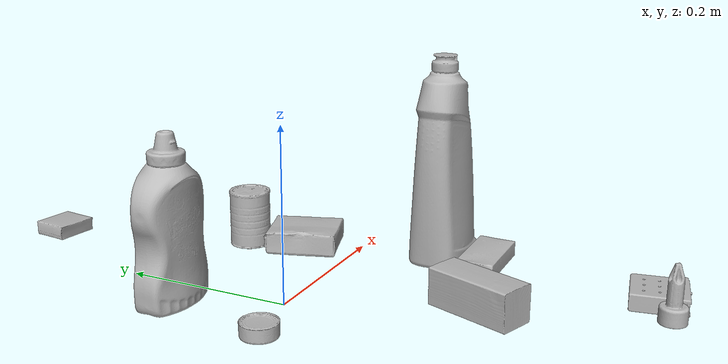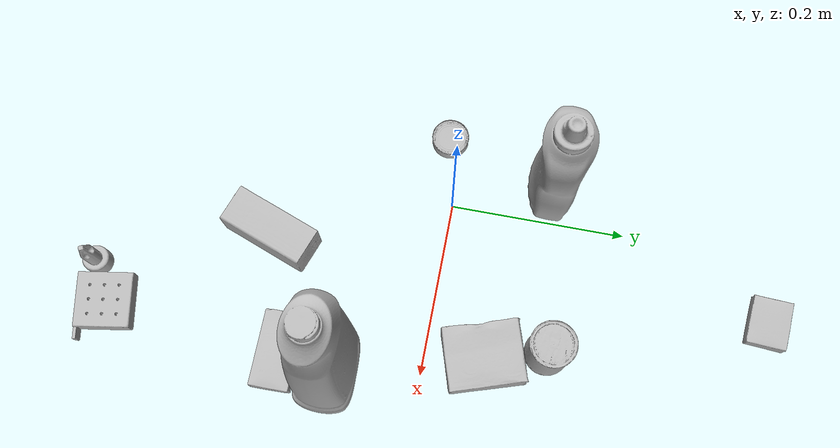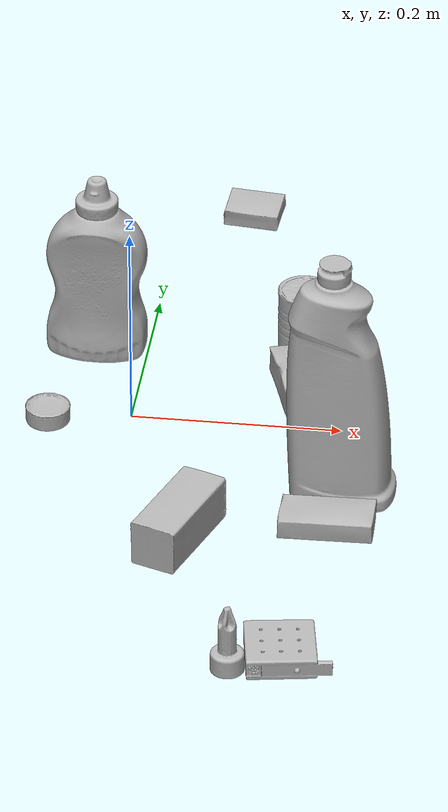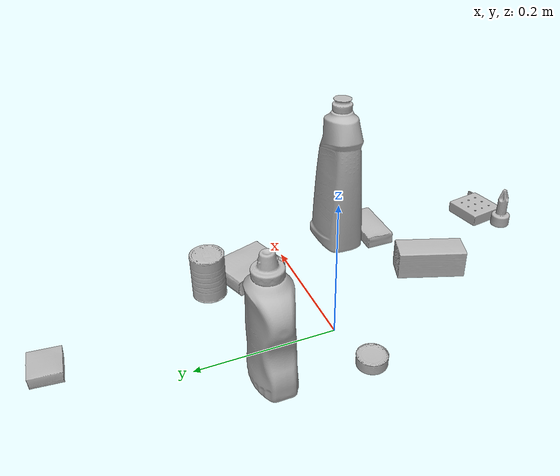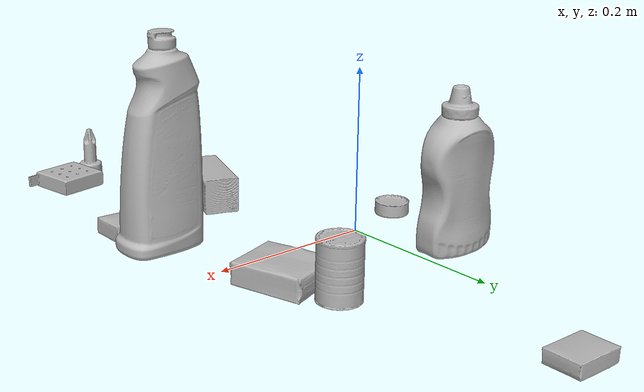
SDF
<sdf version="1.4">
  <world name="default">
    <light name="light1" type="point">
      <pose>0 0 1 0 0 0</pose>
      <diffuse>3 3 3 1</diffuse>
      <specular>3 3 3 1</specular>
    </light>
    <light name="light2" type="point">
      <pose>0 0.5 2 0 0 0</pose>
      <diffuse>1 1 1 1</diffuse>
      <specular>1 1 1 1</specular>
    </light>
    <light name="light3" type="point">
      <pose>0 0.5 2 0 0 0</pose>
      <diffuse>3 3 3 1</diffuse>
      <specular>3 3 3 1</specular>
    </light>
    <scene>
      <ambient>0.7 0.7 0.7</ambient>
    </scene>
    <model name="bottle1">
      <link name="link_bottle1">
        <collision name="default">
          <geometry>
            <mesh>
              <uri>model://mustard_bottle/collision_meshes/collision.obj</uri>
              <scale>1.0 1.0 1.0</scale>
            </mesh>
          </geometry>
          <surface>
            <friction>
              <ode>
                <mu>0.5</mu>
                <mu2>0.5</mu2>
              </ode>
            </friction>
          <contact>
        <ode>
            <max_vel>0</max_vel>
            <min_depth>0.0001</min_depth>
            <kp>1e8</kp>
        </ode>
    </contact></surface>
        </collision>
        <visual name="default">
          <geometry>
            <mesh>
              <uri>model://mustard_bottle/visual_meshes/visual.dae</uri>
              <scale>1.0 1.0 1.0</scale>
            </mesh>
          </geometry>
        </visual>
        <inertial>
          <mass>0.9814921021461487</mass>
          <pose>0.000503245391882956 -0.00015647400869056582 -0.0174757968634367 0.00041823298570721707 0.000946579165099878 0.024853733541460008</pose>
          <inertia>
            <ixx>0.0027254699</ixx>
            <iyy>0.0023913688</iyy>
            <izz>0.0007182988</izz>
            <ixy>0</ixy>
            <ixz>0</ixz>
            <iyz>0</iyz>
          </inertia>
        </inertial>
      </link>
      <pose>-0.048345692455768585 0.11151482164859772 0.09583085775375366 -0.012050520273628523 -0.004890194484266256 -1.5995292844958406</pose>
    </model>
    <model name="bottle2">
      <link name="link_bottle2">
        <collision name="default">
          <geometry>
            <mesh>
              <uri>model://bleach_cleanser/collision_meshes/collision.obj</uri>
              <scale>1.0 1.0 1.0</scale>
            </mesh>
          </geometry>
          <surface>
            <friction>
              <ode>
                <mu>0.5</mu>
                <mu2>0.5</mu2>
              </ode>
            </friction>
          <contact>
        <ode>
            <max_vel>0</max_vel>
            <min_depth>0.0001</min_depth>
            <kp>1e8</kp>
        </ode>
    </contact></surface>
        </collision>
        <visual name="default">
          <geometry>
            <mesh>
              <uri>model://bleach_cleanser/visual_meshes/visual.dae</uri>
              <scale>1.0 1.0 1.0</scale>
            </mesh>
          </geometry>
        </visual>
        <inertial>
          <mass>0.5613878965377808</mass>
          <pose>0.00012193182919872925 0.0037838828284293413 -0.02442161738872528 -0.07381670616369514 0.00042011545192634117 -0.006875071107578698</pose>
          <inertia>
            <ixx>0.0027323565</ixx>
            <iyy>0.002546156</iyy>
            <izz>0.0004671619</izz>
            <ixy>0</ixy>
            <ixz>0</ixz>
            <iyz>0</iyz>
          </inertia>
        </inertial>
      </link>
      <pose>0.21026024222373962 -0.10260500013828278 0.12578415870666504 -0.0002008569479320621 1.540215229152855e-05 1.5710491283935033</pose>
    </model>
    <model name="toy1">
      <link name="link_toy1">
        <collision name="default">
          <geometry>
            <mesh>
              <uri>model://nine_hole_peg_test/collision_meshes/collision.obj</uri>
              <scale>0.5 0.5 0.5</scale>
            </mesh>
          </geometry>
          <surface>
            <friction>
              <ode>
                <mu>0.5</mu>
                <mu2>0.5</mu2>
              </ode>
            </friction>
          <contact>
        <ode>
            <max_vel>0</max_vel>
            <min_depth>0.0001</min_depth>
            <kp>1e8</kp>
        </ode>
    </contact></surface>
        </collision>
        <visual name="default">
          <geometry>
            <mesh>
              <uri>model://nine_hole_peg_test/visual_meshes/visual.dae</uri>
              <scale>0.5 0.5 0.5</scale>
            </mesh>
          </geometry>
        </visual>
        <inertial>
          <mass>0.10001979023218155</mass>
          <pose>-0.002308693015947938 -0.0048238071613013744 1.323034393863054e-05 -0.001466679064329537 0.000719417562538249 -0.6342417933325166</pose>
          <inertia>
            <ixx>3.9099352e-05</ixx>
            <iyy>3.650665e-05</iyy>
            <izz>6.851359e-05</izz>
            <ixy>0</ixy>
            <ixz>0</ixz>
            <iyz>0</iyz>
          </inertia>
        </inertial>
      </link>
      <pose>0.18986894190311432 -0.3650977909564972 0.010385503061115742 -1.2196749320150108e-08 -2.5237427177400424e-09 -1.4038358434000564</pose>
    </model>
    <model name="toy2">
      <link name="link_toy2">
        <collision name="default">
          <geometry>
            <mesh>
              <uri>model://d_toy_airplane/collision_meshes/collision.obj</uri>
              <scale>1.0 1.0 1.0</scale>
            </mesh>
          </geometry>
          <surface>
            <friction>
              <ode>
                <mu>0.5</mu>
                <mu2>0.5</mu2>
              </ode>
            </friction>
          <contact>
        <ode>
            <max_vel>0</max_vel>
            <min_depth>0.0001</min_depth>
            <kp>1e8</kp>
        </ode>
    </contact></surface>
        </collision>
        <visual name="default">
          <geometry>
            <mesh>
              <uri>model://d_toy_airplane/visual_meshes/visual.dae</uri>
              <scale>1.0 1.0 1.0</scale>
            </mesh>
          </geometry>
        </visual>
        <inertial>
          <mass>0.019254321232438087</mass>
          <pose>9.410314669366926e-05 -5.809308640891686e-05 -0.011728096753358841 0.0002669110283705203 0.00467899073598619 0.5194519611142697</pose>
          <inertia>
            <ixx>5.7720713e-06</ixx>
            <iyy>5.776424e-06</iyy>
            <izz>1.7426261e-06</izz>
            <ixy>0</ixy>
            <ixz>0</ixz>
            <iyz>0</iyz>
          </inertia>
        </inertial>
      </link>
      <pose>0.13998591899871826 -0.3845641314983368 0.033338963985443115 8.828675977106431e-05 -6.94186840327521e-05 2.0534920349952714</pose>
    </model>
    <model name="can1">
      <link name="link_can1">
        <collision name="default">
          <geometry>
            <mesh>
              <uri>model://master_chef_can/collision_meshes/collision.obj</uri>
              <scale>0.5 0.5 0.5</scale>
            </mesh>
          </geometry>
          <surface>
            <friction>
              <ode>
                <mu>0.5</mu>
                <mu2>0.5</mu2>
              </ode>
            </friction>
          <contact>
        <ode>
            <max_vel>0</max_vel>
            <min_depth>0.0001</min_depth>
            <kp>1e8</kp>
        </ode>
    </contact></surface>
        </collision>
        <visual name="default">
          <geometry>
            <mesh>
              <uri>model://master_chef_can/visual_meshes/visual.dae</uri>
              <scale>0.5 0.5 0.5</scale>
            </mesh>
          </geometry>
        </visual>
        <inertial>
          <mass>0.11909646540880203</mass>
          <pose>-4.661963976104744e-05 1.3926845099376806e-07 -5.07990553160198e-05 -0.0017995128948922 0.0006479239957886283 -0.6102624789319168</pose>
          <inertia>
            <ixx>6.990155e-05</ixx>
            <iyy>6.938709e-05</iyy>
            <izz>3.8625953e-05</izz>
            <ixy>0</ixy>
            <ixz>0</ixz>
            <iyz>0</iyz>
          </inertia>
        </inertial>
      </link>
      <pose>0.14946343004703522 0.13426022231578827 0.03530200198292732 -1.4371525131367293e-06 -7.87530471786413e-07 0.43351208447753026</pose>
    </model>
    <model name="can2">
      <link name="link_can2">
        <collision name="default">
          <geometry>
            <mesh>
              <uri>model://tuna_fish_can/collision_meshes/collision.obj</uri>
              <scale>0.5 0.5 0.5</scale>
            </mesh>
          </geometry>
          <surface>
            <friction>
              <ode>
                <mu>0.5</mu>
                <mu2>0.5</mu2>
              </ode>
            </friction>
          <contact>
        <ode>
            <max_vel>0</max_vel>
            <min_depth>0.0001</min_depth>
            <kp>1e8</kp>
        </ode>
    </contact></surface>
        </collision>
        <visual name="default">
          <geometry>
            <mesh>
              <uri>model://tuna_fish_can/visual_meshes/visual.dae</uri>
              <scale>0.5 0.5 0.5</scale>
            </mesh>
          </geometry>
        </visual>
        <inertial>
          <mass>0.019333453848958015</mass>
          <pose>-2.0361452698125504e-05 -7.256490789586678e-06 -0.0005269024986773729 -0.0017944786606280685 0.0001716327651594619 0.24054823336333434</pose>
          <inertia>
            <ixx>2.6139116e-06</ixx>
            <iyy>2.6030175e-06</iyy>
            <izz>4.4727767e-06</izz>
            <ixy>0</ixy>
            <ixz>0</ixz>
            <iyz>0</iyz>
          </inertia>
        </inertial>
      </link>
      <pose>-0.07763659209012985 -0.016318751499056816 0.008520002476871014 3.254677961477869e-08 8.361991069168336e-09 0.03259075197757917</pose>
    </model>
    <model name="box1">
      <link name="link_box1">
        <collision name="default">
          <geometry>
            <mesh>
              <uri>model://sugar_box/collision_meshes/collision.obj</uri>
              <scale>0.5 0.5 0.5</scale>
            </mesh>
          </geometry>
          <surface>
            <friction>
              <ode>
                <mu>0.5</mu>
                <mu2>0.5</mu2>
              </ode>
            </friction>
          <contact>
        <ode>
            <max_vel>0</max_vel>
            <min_depth>0.0001</min_depth>
            <kp>1e8</kp>
        </ode>
    </contact></surface>
        </collision>
        <visual name="default">
          <geometry>
            <mesh>
              <uri>model://sugar_box/visual_meshes/visual.dae</uri>
              <scale>0.5 0.5 0.5</scale>
            </mesh>
          </geometry>
        </visual>
        <inertial>
          <mass>0.11277332901954651</mass>
          <pose>0.0005171863595023751 1.924554817378521e-05 -0.0001818240125430748 -0.00040462603870476286 0.0010506635217257978 0.002615378323397263</pose>
          <inertia>
            <ixx>2.34906e-05</ixx>
            <iyy>7.592646e-05</iyy>
            <izz>9.089305e-05</izz>
            <ixy>0</ixy>
            <ixz>0</ixz>
            <iyz>0</iyz>
          </inertia>
        </inertial>
      </link>
      <pose>0.2036500871181488 -0.16021457314491272 0.011399301700294018 0.0007743837315249013 -0.023433310547522013 -0.011042937242767715</pose>
    </model>
    <model name="box2">
      <link name="link_box2">
        <collision name="default">
          <geometry>
            <mesh>
              <uri>model://gelatin_box/collision_meshes/collision.obj</uri>
              <scale>1.0 1.0 1.0</scale>
            </mesh>
          </geometry>
          <surface>
            <friction>
              <ode>
                <mu>0.5</mu>
                <mu2>0.5</mu2>
              </ode>
            </friction>
          <contact>
        <ode>
            <max_vel>0</max_vel>
            <min_depth>0.0001</min_depth>
            <kp>1e8</kp>
        </ode>
    </contact></surface>
        </collision>
        <visual name="default">
          <geometry>
            <mesh>
              <uri>model://gelatin_box/visual_meshes/visual.dae</uri>
              <scale>1.0 1.0 1.0</scale>
            </mesh>
          </geometry>
        </visual>
        <inertial>
          <mass>0.18825438618659973</mass>
          <pose>0.0004319618456065655 0.00011156871914863586 -0.0003640321083366871 -0.0010503720853528096 -0.004755817758068365 0.016440559471334753</pose>
          <inertia>
            <ixx>0.00013289225</ixx>
            <iyy>9.492423e-05</iyy>
            <izz>0.0002022916</izz>
            <ixy>0</ixy>
            <ixz>0</ixz>
            <iyz>0</iyz>
          </inertia>
        </inertial>
      </link>
      <pose>0.16767902672290802 0.06585422903299332 0.01516831386834383 0.005596917276084605 -0.0073039716945658105 -2.8387489873477296</pose>
    </model>
    <model name="box3">
      <link name="link_box3">
        <collision name="default">
          <geometry>
            <mesh>
              <uri>model://wood_block/collision_meshes/collision.obj</uri>
              <scale>0.5 0.5 0.5</scale>
            </mesh>
          </geometry>
          <surface>
            <friction>
              <ode>
                <mu>0.5</mu>
                <mu2>0.5</mu2>
              </ode>
            </friction>
          <contact>
        <ode>
            <max_vel>0</max_vel>
            <min_depth>0.0001</min_depth>
            <kp>1e8</kp>
        </ode>
    </contact></surface>
        </collision>
        <visual name="default">
          <geometry>
            <mesh>
              <uri>model://wood_block/visual_meshes/visual.dae</uri>
              <scale>0.5 0.5 0.5</scale>
            </mesh>
          </geometry>
        </visual>
        <inertial>
          <mass>0.16905224323272705</mass>
          <pose>-2.906657982748584e-06 -0.00028540476341731846 0.00013204291462898254 -0.05220975529285028 -0.0051926941753174345 -0.0068613788950967446</pose>
          <inertia>
            <ixx>5.655437e-05</ixx>
            <iyy>0.00017865526</iyy>
            <izz>0.00017798702</izz>
            <ixy>0</ixy>
            <ixz>0</ixz>
            <iyz>0</iyz>
          </inertia>
        </inertial>
      </link>
      <pose>0.07145766913890839 -0.19543221592903137 0.02262926660478115 -0.005208563463407115 0.005718710877305176 1.2201813969509046</pose>
    </model>
    <model name="box4">
      <link name="link_box4">
        <collision name="default">
          <geometry>
            <mesh>
              <uri>model://pudding_box/collision_meshes/collision.obj</uri>
              <scale>0.5 0.5 0.5</scale>
            </mesh>
          </geometry>
          <surface>
            <friction>
              <ode>
                <mu>0.5</mu>
                <mu2>0.5</mu2>
              </ode>
            </friction>
          <contact>
        <ode>
            <max_vel>0</max_vel>
            <min_depth>0.0001</min_depth>
            <kp>1e8</kp>
        </ode>
    </contact></surface>
        </collision>
        <visual name="default">
          <geometry>
            <mesh>
              <uri>model://pudding_box/visual_meshes/visual.dae</uri>
              <scale>0.5 0.5 0.5</scale>
            </mesh>
          </geometry>
        </visual>
        <inertial>
          <mass>0.04372405260801315</mass>
          <pose>0.00024474109522998333 0.00040339428232982755 -0.00025944135268218815 0.005213099923843092 -0.006603798704775496 0.02007982702870814</pose>
          <inertia>
            <ixx>1.2356946e-05</ixx>
            <iyy>8.313842e-06</iyy>
            <izz>1.8248264e-05</izz>
            <ixy>0</ixy>
            <ixz>0</ixz>
            <iyz>0</iyz>
          </inertia>
        </inertial>
      </link>
      <pose>0.07275284081697464 0.3724011182785034 0.00986290443688631 0.0223485728193818 -0.011391700937705545 1.5080347849568814</pose>
    </model>
  <physics type="ode">
      <max_contacts>50</max_contacts>
      <ode>
        <solver>
          <type>quick</type>
          <iters>75</iters>
        </solver>
        <constraints>
          <contact_max_correcting_vel>0</contact_max_correcting_vel>
          <contact_surface_layer>0</contact_surface_layer>
        </constraints>
      </ode>
    </physics></world>
</sdf>
